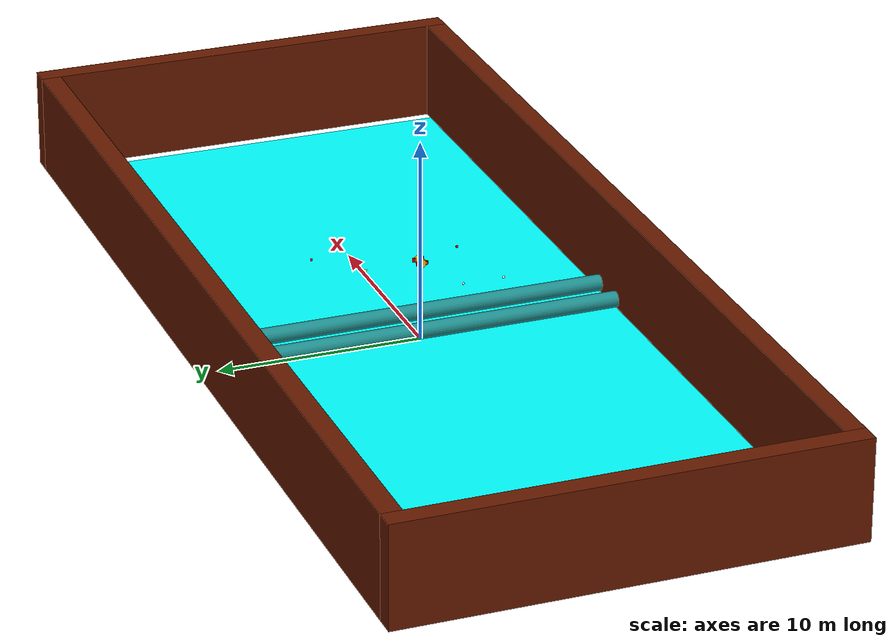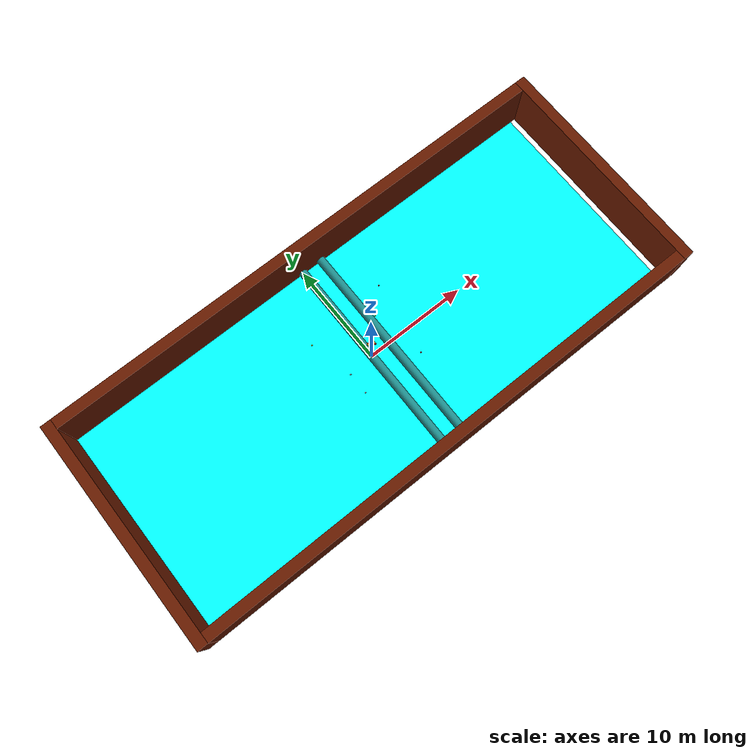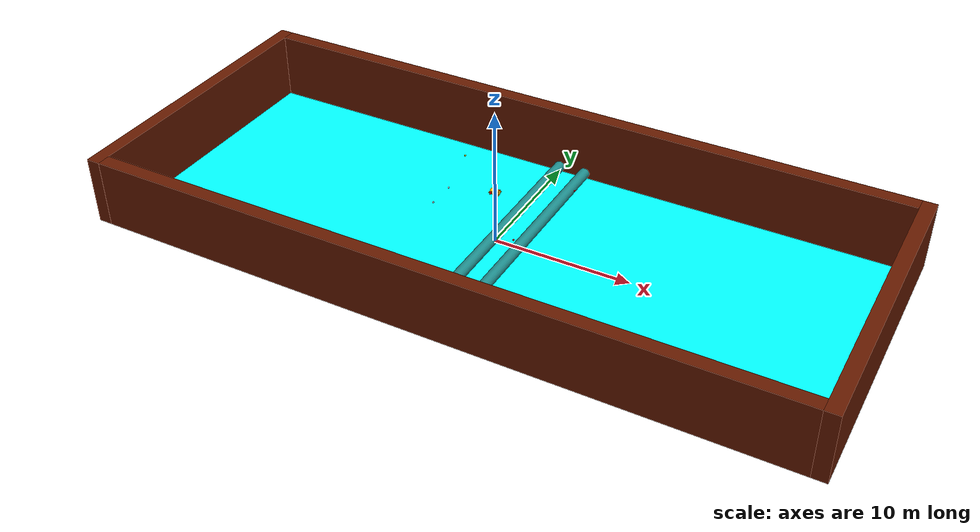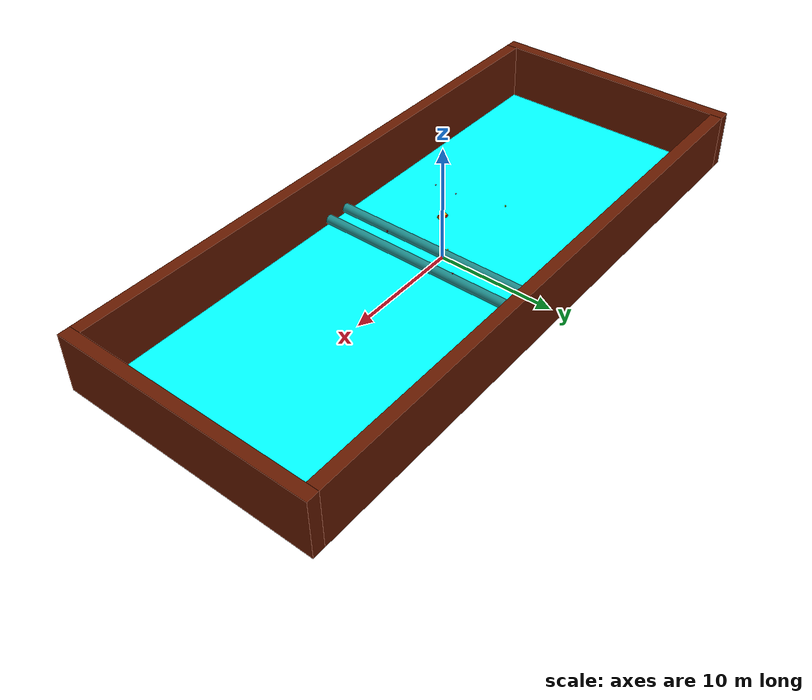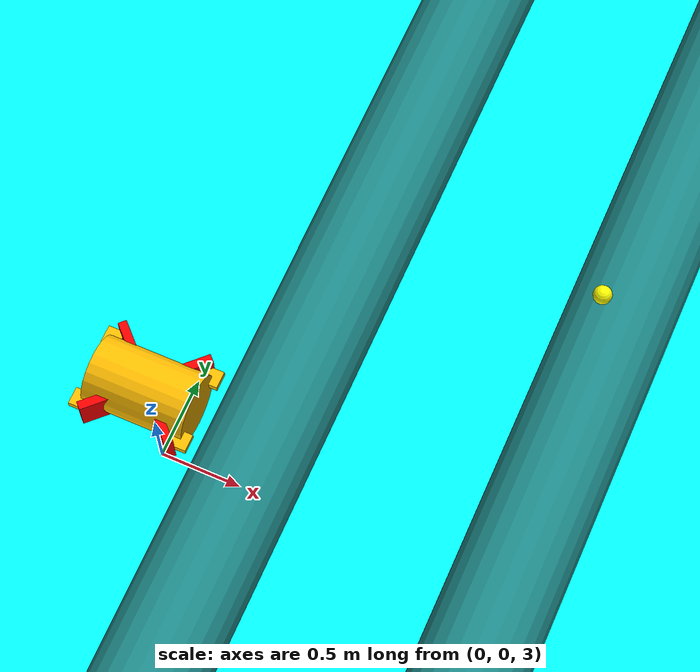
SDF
<?xml version="1.0" ?>

<!-- Run demo with ign-gazebo examples/standalone/multi_lrauv_race
  (example is provided in ign-gazebo6+). -->

<sdf version="1.6">
  <world name="multi_lrauv">
    <scene>
      <!-- For turquoise ambient to match particle effect -->
      <ambient>0.0 1.0 1.0</ambient>
      <background>0.0 0.7 0.8</background>
    </scene>

    <physics name="1ms" type="ode">
      <max_step_size>0.001</max_step_size>
      <real_time_factor>1.0</real_time_factor>
    </physics>
    <plugin
      filename="ignition-gazebo-physics-system"
      name="ignition::gazebo::systems::Physics">
    </plugin>
    <plugin
      filename="ignition-gazebo-user-commands-system"
      name="ignition::gazebo::systems::UserCommands">
    </plugin>
    <plugin
      filename="ignition-gazebo-scene-broadcaster-system"
      name="ignition::gazebo::systems::SceneBroadcaster">
    </plugin>
    <plugin
      filename="ignition-gazebo-contact-system"
      name="ignition::gazebo::systems::Contact">
    </plugin>

    <plugin
      filename="libignition-gazebo-imu-system.so"
      name="ignition::gazebo::systems::Imu">
    </plugin>
    <plugin
      filename="ignition-gazebo-sensors-system"
      name="ignition::gazebo::systems::Sensors">
    </plugin>

    <plugin
      filename="ignition-gazebo-buoyancy-system"
      name="ignition::gazebo::systems::Buoyancy">
      <uniform_fluid_density>1000</uniform_fluid_density>
    </plugin>

    <!-- Requires ParticleEmitter2 in ign-gazebo 4.8.0, which will be copied
      to ParticleEmitter in Ignition G.
      See https://github.com/ignitionrobotics/ign-gazebo/pull/730 -->
    <plugin
      filename="ignition-gazebo-particle-emitter2-system"
      name="ignition::gazebo::systems::ParticleEmitter2">
    </plugin>

    <light type="directional" name="sun">
      <cast_shadows>true</cast_shadows>
      <pose>0 0 10 0 0 0</pose>
      <diffuse>1 1 1 1</diffuse>
      <specular>0.5 0.5 0.5 1</specular>
      <attenuation>
        <range>1000</range>
        <constant>0.9</constant>
        <linear>0.01</linear>
        <quadratic>0.001</quadratic>
      </attenuation>
      <direction>-0.5 0.1 -0.9</direction>
    </light>

    <include>
      <pose>0 0 4 0 1.57 0</pose>
      <uri>models/SousMarin_Config1_v1</uri>
      <name>SousMarin</name>
    </include>

    <include>
      <pose>-3 -3 4 0 0 0</pose>
      <uri>models/BoueeBlanche_v1</uri>
      <name>BoueeBlanche1</name>
    </include>

    <include>
      <pose>-3 -1 4 0 0 0</pose>
      <uri>models/BoueeBlanche_v1</uri>
      <name>BoueeBlanche2</name>
    </include>

    <include>
      <pose>2 2 3 0 0 0</pose>
      <uri>models/BoueeJaune_v1</uri>
      <name>BoueeJaune1</name>
    </include>

    <include>
      <pose>-4 3 4 0 0 0</pose>
      <uri>models/BoueeJaune_v1</uri>
      <name>BoueeJaune2</name>
    </include>

    <include>
      <pose>4 4 3 0 0 0</pose>
      <uri>models/BoueeRouge_v1</uri>
      <name>BoueeRouge1</name>
    </include>

    <include>
      <pose>3 -3 3 0 0 0</pose>
      <uri>models/BoueeRouge_v1</uri>
      <name>BoueeRouge2</name>
    </include>

    <include>
      <pose>2 0 0.4 1.57 0 0</pose>
      <uri>models/Pipeline_v1</uri>
      <name>Pipeline1</name>
    </include>

    <include>
      <pose>0 0 0.4 1.57 0 0</pose>
      <uri>models/Pipeline_v1</uri>
      <name>Pipeline2</name>
    </include>

    <include>
      <pose>-25 0 2.5 0 0 0</pose>
      <uri>models/Mur_Piscine_v1</uri>
      <name>Mur_Piscine</name>
    </include>

    <include>
      <pose>0 0 -0.01 0 0 0</pose>
      <uri>models/Sol_v1</uri>
      <name>Sol</name>
    </include>

  </world>
</sdf>

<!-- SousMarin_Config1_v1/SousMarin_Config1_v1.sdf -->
<sdf version="1.6">
  <model name="SousMarin_Config1_v1">
    <!-- Body -->
    <link name="Chassis">
      <inertial>
        <mass>10</mass>
        <inertia>
          <ixx>1.825</ixx>
          <ixy>0</ixy>
          <ixz>0</ixz>
          <iyy>1.825</iyy>
          <iyz>0</iyz>
          <izz>0.05</izz>
        </inertia>
      </inertial>

      <collision name="main_body">
        <geometry>
          <cylinder>
            <radius>0.2</radius>
            <length>0.6</length>
          </cylinder>
        </geometry>
      </collision>

      <visual name="visual">
        <geometry>
          <cylinder>
            <radius>0.2</radius>
            <length>0.6</length>
          </cylinder>
        </geometry>
        <material>
            <ambient>1 0.74 0 1</ambient>
            <diffuse>1 0.74 0 1</diffuse>
            <specular>1 0.74 0 1</specular>
        </material>
      </visual>

      <sensor name="imu_sensor" type="imu">
        <always_on>1</always_on>
        <update_rate>250</update_rate>
        <topic>imu</topic>
        <visualize>true</visualize>
        <imu>
            <enable_orientation>0</enable_orientation>
            <angular_velocity>
                <x>
                    <noise type="gaussian">
                        <mean>0</mean>
                        <stddev>0.009</stddev>
                        <bias_mean>0.00075</bias_mean>
                        <bias_stddev>0.005</bias_stddev>
                        <dynamic_bias_stddev>0.00002</dynamic_bias_stddev>
                        <dynamic_bias_correlation_time>400.0</dynamic_bias_correlation_time>
                        <precision>0.00025</precision>
                    </noise>
                </x>
                <y>
                    <noise type="gaussian">
                        <mean>0
                        </mean>
                        <stddev>0.009
                        </stddev>
                        <bias_mean>0.00075
                        </bias_mean>
                        <bias_stddev>0.005
                        </bias_stddev>
                        <dynamic_bias_stddev>0.00002
                        </dynamic_bias_stddev>
                        <dynamic_bias_correlation_time>400.0
                        </dynamic_bias_correlation_time>
                        <precision>0.00025
                        </precision>
                    </noise>
                </y>
                <z>
                    <noise type="gaussian">
                        <mean>0
                        </mean>
                        <stddev>0.009
                        </stddev>
                        <bias_mean>0.00075
                        </bias_mean>
                        <bias_stddev>0.005
                        </bias_stddev>
                        <dynamic_bias_stddev>0.00002
                        </dynamic_bias_stddev>
                        <dynamic_bias_correlation_time>400.0
                        </dynamic_bias_correlation_time>
                        <precision>0.00025
                        </precision>
                    </noise>
                </z>
            </angular_velocity>
            <linear_acceleration>
                <x>
                    <noise type="gaussian">
                        <mean>0
                        </mean>
                        <stddev>0.021
                        </stddev>
                        <bias_mean>0.05
                        </bias_mean>
                        <bias_stddev>0.0075
                        </bias_stddev>
                        <dynamic_bias_stddev>0.000375
                        </dynamic_bias_stddev>
                        <dynamic_bias_correlation_time>175.0
                        </dynamic_bias_correlation_time>
                        <precision>0.005
                        </precision>
                    </noise>
                </x>
                <y>
                    <noise type="gaussian">
                        <mean>0
                        </mean>
                        <stddev>0.021
                        </stddev>
                        <bias_mean>0.05
                        </bias_mean>
                        <bias_stddev>0.0075
                        </bias_stddev>
                        <dynamic_bias_stddev>0.000375
                        </dynamic_bias_stddev>
                        <dynamic_bias_correlation_time>175.0
                        </dynamic_bias_correlation_time>
                        <precision>0.005
                        </precision>
                    </noise>
                </y>
                <z>
                    <noise type="gaussian">
                        <mean>0
                        </mean>
                        <stddev>0.021
                        </stddev>
                        <bias_mean>0.05
                        </bias_mean>
                        <bias_stddev>0.0075
                        </bias_stddev>
                        <dynamic_bias_stddev>0.000375
                        </dynamic_bias_stddev>
                        <dynamic_bias_correlation_time>175.0
                        </dynamic_bias_correlation_time>
                        <precision>0.005
                        </precision>
                    </noise>
                </z>
            </linear_acceleration>
        </imu>
      </sensor>

      <sensor name="gps" type="navsat">
          <always_on>1</always_on>
          <update_rate>1</update_rate>
          <topic>gps</topic>
          <visualize>true</visualize>
      </sensor>

      <sensor name="magnetometer" type="magnetometer">
          <always_on>1</always_on>
          <update_rate>20</update_rate>
          <topic>magnetometer</topic>
          <visualize>true</visualize>
          <magnetometer>
              <x>
                  <noise type="gaussian">
                      <mean>0.000000080
                      </mean>
                      <bias_mean>0.000000400
                      </bias_mean>
                  </noise>
              </x>
              <y>
                  <noise type="gaussian">
                      <mean>0.000000080
                      </mean>
                      <bias_mean>0.000000400
                      </bias_mean>
                  </noise>
              </y>
              <z>
                  <noise type="gaussian">
                      <mean>0.000000080
                      </mean>
                      <bias_mean>0.000000400
                      </bias_mean>
                  </noise>
              </z>
          </magnetometer>
      </sensor>

      <sensor name="scan_omni" type="gpu_lidar">
          <pose>0.21 0 0 0 0 0</pose>
          <update_rate>10</update_rate>
          <topic>gpu_lidar</topic>
          <visualize>true</visualize>
          <lidar>
              <scan>
                  <horizontal>
                      <!-- Real samples value is 1800 -->
                      <samples>1800
                      </samples>
                      <resolution>1
                      </resolution>
                      <min_angle>-3.141592654
                      </min_angle>
                      <max_angle>3.141592654
                      </max_angle>
                  </horizontal>
                  <vertical>
                      <samples>16
                      </samples>
                      <resolution>1
                      </resolution>
                      <min_angle>-0.261799388
                      </min_angle>
                      <max_angle>0.261799388
                      </max_angle>
                  </vertical>
              </scan>
              <range>
                  <min>0.2
                  </min>
                  <max>100.0
                  </max>
                  <resolution>0.01
                  </resolution>
              </range>
              <noise>
                  <type>gaussian
                  </type>
                  <mean>0
                  </mean>
                  <!-- Change the sdfdev value to 0.01 to add noise in to the sensor. You can set other values if you want. -->
                  <stddev>0.01
                  </stddev>
              </noise>
          </lidar>
          <always_on>false
          </always_on>
          <visualize>false
          </visualize>
      </sensor>

      <sensor name="camera_front" type="camera">
          <pose>0 0 0.3 0 -1.57 0</pose>
          <always_on>1</always_on>
          <update_rate>20</update_rate>
          <topic>camera_front</topic>
          <visualize>true</visualize>
          <camera name="camera_front">
              <horizontal_fov>2</horizontal_fov>
              <lens>
                  <intrinsics>
                    <!-- fx = fy = width / ( 2 * tan (hfov / 2 ) ) -->
                    <fx>1108.5</fx>
                    <fy>1108.5</fy>
                    <!-- cx = ( width + 1 ) / 2 -->
                    <cx>640.5</cx>
                    <!-- cy = ( height + 1 ) / 2 -->
                    <cy>480.5</cy>
                    <s>0</s>
                  </intrinsics>
              </lens>
              <distortion>
                  <k1>0.0</k1>
                  <k2>0.0</k2>
                  <k3>0.0</k3>
                  <p1>0.0</p1>
                  <p2>0.0</p2>
                  <center>0.5 0.5</center>
              </distortion>
              <image>
                  <width>1280</width>
                  <height>960</height>
                  <format>R8G8B8</format>
              </image>
              <clip>
                  <near>0.02</near>
                  <far>300</far>
              </clip>
              <noise>
                  <type>gaussian</type>
                  <mean>0</mean>
                  <stddev>0.007</stddev>
              </noise>
          </camera>
      </sensor>

    </link>

    <link name="Moteur1">
      <pose relative_to="Chassis">0 0.2 0.2 0.79 0 0</pose>
      <inertial>
        <mass>0.2</mass>
        <inertia>
          <ixx>4.25E-3</ixx>
          <ixy>0</ixy>
          <ixz>0</ixz>
          <iyy>4.25E-3</iyy>
          <iyz>0</iyz>
          <izz>8E-3</izz>
        </inertia>
      </inertial>

      <collision name="collision">
        <geometry>
          <box>
            <size>0.2 0.2 0.05</size>
          </box>
        </geometry>
      </collision>

      <visual name= "visual">
        <geometry>
          <box>
            <size>0.2 0.2 0.05</size>
          </box>
        </geometry>
        <material>
            <ambient>1 0 0 1</ambient>
            <diffuse>1 0 0 1</diffuse>
            <specular>1 0 0 1</specular>
        </material>
      </visual>
    </link>

    <joint name="Chassis_Moteur1" type="fixed">
      <parent>Chassis</parent>
      <child>Moteur1</child>
    </joint>

    <link name="Moteur2">
      <pose relative_to="Chassis">0 0.2 -0.2 -0.79 0 0</pose>
      <inertial>
        <mass>0.2</mass>
        <inertia>
          <ixx>4.25E-3</ixx>
          <ixy>0</ixy>
          <ixz>0</ixz>
          <iyy>4.25E-3</iyy>
          <iyz>0</iyz>
          <izz>8E-3</izz>
        </inertia>
      </inertial>

      <collision name="collision">
        <geometry>
          <box>
            <size>0.2 0.2 0.05</size>
          </box>
        </geometry>
      </collision>

      <visual name= "visual">
        <geometry>
          <box>
            <size>0.2 0.2 0.05</size>
          </box>
        </geometry>
        <material>
            <ambient>1 0 0 1</ambient>
            <diffuse>1 0 0 1</diffuse>
            <specular>1 0 0 1</specular>
        </material>
      </visual>
    </link>

    <joint name="Chassis_Moteur2" type="fixed">
      <parent>Chassis</parent>
      <child>Moteur2</child>
    </joint>

    <link name="Moteur3">
      <pose relative_to="Chassis">0 -0.2 -0.2 0.79 0 0</pose>
      <inertial>
        <mass>0.2</mass>
        <inertia>
          <ixx>4.25E-3</ixx>
          <ixy>0</ixy>
          <ixz>0</ixz>
          <iyy>4.25E-3</iyy>
          <iyz>0</iyz>
          <izz>8E-3</izz>
        </inertia>
      </inertial>

      <collision name="collision">
        <geometry>
          <box>
            <size>0.2 0.2 0.05</size>
          </box>
        </geometry>
      </collision>

      <visual name= "visual">
        <geometry>
          <box>
            <size>0.2 0.2 0.05</size>
          </box>
        </geometry>
        <material>
            <ambient>1 0 0 1</ambient>
            <diffuse>1 0 0 1</diffuse>
            <specular>1 0 0 1</specular>
        </material>
      </visual>
    </link>

    <joint name="Chassis_Moteur3" type="fixed">
      <parent>Chassis</parent>
      <child>Moteur3</child>
    </joint>

    <link name="Moteur4">
      <pose relative_to="Chassis">0 -0.2 0.2 -0.79 0 0</pose>
      <inertial>
        <mass>0.2</mass>
        <inertia>
          <ixx>4.25E-3</ixx>
          <ixy>0</ixy>
          <ixz>0</ixz>
          <iyy>4.25E-3</iyy>
          <iyz>0</iyz>
          <izz>8E-3</izz>
        </inertia>
      </inertial>

      <collision name="collision">
        <geometry>
          <box>
            <size>0.2 0.2 0.05</size>
          </box>
        </geometry>
      </collision>

      <visual name= "visual">
        <geometry>
          <box>
            <size>0.2 0.2 0.05</size>
          </box>
        </geometry>
        <material>
            <ambient>1 0 0 1</ambient>
            <diffuse>1 0 0 1</diffuse>
            <specular>1 0 0 1</specular>
        </material>
      </visual>
    </link>

    <joint name="Chassis_Moteur4" type="fixed">
      <parent>Chassis</parent>
      <child>Moteur4</child>
    </joint>

    <link name="MoteurProf1">
      <pose relative_to="Chassis">0 0.2 0.3 0 1.57 0</pose>
      <inertial>
        <mass>0.2</mass>
        <inertia>
          <ixx>1.16E-3</ixx>
          <ixy>0</ixy>
          <ixz>0</ixz>
          <iyy>1.16E-3</iyy>
          <iyz>0</iyz>
          <izz>2E-3</izz>
        </inertia>
      </inertial>

      <collision name="collision">
        <geometry>
          <box>
            <size>0.1 0.1 0.04</size>
          </box>
        </geometry>
      </collision>

      <visual name= "visual">
        <geometry>
          <box>
            <size>0.1 0.1 0.04</size>
          </box>
        </geometry>
        <material>
            <ambient>1 0.74 0 1</ambient>
            <diffuse>1 0.74 0 1</diffuse>
            <specular>1 0.74 0 1</specular>
        </material>
      </visual>
    </link>

    <joint name="Chassis_MoteurProf1" type="fixed">
      <parent>Chassis</parent>
      <child>MoteurProf1</child>
    </joint>

    <link name="MoteurProf2">
      <pose relative_to="Chassis">0 0.2 -0.3 0 1.57 0</pose>
      <inertial>
        <mass>0.2</mass>
        <inertia>
          <ixx>1.16E-3</ixx>
          <ixy>0</ixy>
          <ixz>0</ixz>
          <iyy>1.16E-3</iyy>
          <iyz>0</iyz>
          <izz>2E-3</izz>
        </inertia>
      </inertial>

      <collision name="collision">
        <geometry>
          <box>
            <size>0.1 0.1 0.04</size>
          </box>
        </geometry>
      </collision>

      <visual name= "visual">
        <geometry>
          <box>
            <size>0.1 0.1 0.04</size>
          </box>
        </geometry>
        <material>
            <ambient>1 0.74 0 1</ambient>
            <diffuse>1 0.74 0 1</diffuse>
            <specular>1 0.74 0 1</specular>
        </material>
      </visual>
    </link>

    <joint name="Chassis_MoteurProf2" type="fixed">
      <parent>Chassis</parent>
      <child>MoteurProf2</child>
    </joint>

    <link name="MoteurProf3">
      <pose relative_to="Chassis">0 -0.2 -0.3 0 1.57 0</pose>
      <inertial>
        <mass>0.2</mass>
        <inertia>
          <ixx>1.16E-3</ixx>
          <ixy>0</ixy>
          <ixz>0</ixz>
          <iyy>1.16E-3</iyy>
          <iyz>0</iyz>
          <izz>2E-3</izz>
        </inertia>
      </inertial>

      <collision name="collision">
        <geometry>
          <box>
            <size>0.1 0.1 0.04</size>
          </box>
        </geometry>
      </collision>

      <visual name= "visual">
        <geometry>
          <box>
            <size>0.1 0.1 0.04</size>
          </box>
        </geometry>
        <material>
            <ambient>1 0.74 0 1</ambient>
            <diffuse>1 0.74 0 1</diffuse>
            <specular>1 0.74 0 1</specular>
        </material>
      </visual>
    </link>

    <joint name="Chassis_MoteurProf3" type="fixed">
      <parent>Chassis</parent>
      <child>MoteurProf3</child>
    </joint>

    <link name="MoteurProf4">
      <pose relative_to="Chassis">0 -0.2 0.3 0 1.57 0</pose>
      <inertial>
        <mass>0.2</mass>
        <inertia>
          <ixx>1.16E-3</ixx>
          <ixy>0</ixy>
          <ixz>0</ixz>
          <iyy>1.16E-3</iyy>
          <iyz>0</iyz>
          <izz>2E-3</izz>
        </inertia>
      </inertial>

      <collision name="collision">
        <geometry>
          <box>
            <size>0.1 0.1 0.04</size>
          </box>
        </geometry>
      </collision>

      <visual name= "visual">
        <geometry>
          <box>
            <size>0.1 0.1 0.04</size>
          </box>
        </geometry>
        <material>
            <ambient>1 0.74 0 1</ambient>
            <diffuse>1 0.74 0 1</diffuse>
            <specular>1 0.74 0 1</specular>
        </material>
      </visual>
    </link>

    <joint name="Chassis_MoteurProf4" type="fixed">
      <parent>Chassis</parent>
      <child>MoteurProf4</child>
    </joint>

    <plugin
      filename="gz-sim-odometry-publisher-system"
      name="gz::sim::systems::OdometryPublisher">
      <dimensions>3</dimensions>
    </plugin>

  </model>
</sdf>

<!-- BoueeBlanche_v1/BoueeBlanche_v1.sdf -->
<sdf version="1.6">
  <model name="BoueeBlanche_v1">
    <static>true</static>
    <link name="BoueeBlanche">
      <inertial>
        <mass>0.01</mass>
        <inertia>
          <ixx>4.17E-6</ixx>
          <ixy>0</ixy>
          <ixz>0</ixz>
          <iyy>4.17E-6</iyy>
          <iyz>0</iyz>
          <izz>4.17E-6</izz>
        </inertia>
      </inertial>

      <collision name="collision">
        <geometry>
          <sphere>
            <radius>0.06</radius>
          </sphere>
        </geometry>
      </collision>

      <visual name="visual">
        <geometry>
          <sphere>
            <radius>0.06</radius>
          </sphere>
        </geometry>
        <material>
            <ambient>1 1 1 1</ambient>
            <diffuse>1 1 1 1</diffuse>
            <specular>1 1 1 1</specular>
        </material>
      </visual>
    </link>
  </model>
</sdf>

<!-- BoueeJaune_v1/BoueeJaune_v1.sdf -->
<sdf version="1.6">
  <model name="BoueeBlanche_v1">
    <static>true</static>
    <link name="BoueeBlanche">
      <inertial>
        <mass>0.01</mass>
        <inertia>
          <ixx>4.17E-6</ixx>
          <ixy>0</ixy>
          <ixz>0</ixz>
          <iyy>4.17E-6</iyy>
          <iyz>0</iyz>
          <izz>4.17E-6</izz>
        </inertia>
      </inertial>

      <collision name="collision">
        <geometry>
          <sphere>
            <radius>0.06</radius>
          </sphere>
        </geometry>
      </collision>

      <visual name="visual">
        <geometry>
          <sphere>
            <radius>0.06</radius>
          </sphere>
        </geometry>
        <material>
            <ambient>1 1 0 1</ambient>
            <diffuse>1 1 0 1</diffuse>
            <specular>1 1 0 1</specular>
        </material>
      </visual>
    </link>
  </model>
</sdf>

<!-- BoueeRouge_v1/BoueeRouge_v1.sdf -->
<sdf version="1.6">
  <model name="BoueeBlanche_v1">
    <static>true</static>
    <link name="BoueeBlanche">
      <inertial>
        <mass>0.01</mass>
        <inertia>
          <ixx>4.17E-6</ixx>
          <ixy>0</ixy>
          <ixz>0</ixz>
          <iyy>4.17E-6</iyy>
          <iyz>0</iyz>
          <izz>4.17E-6</izz>
        </inertia>
      </inertial>

      <collision name="collision">
        <geometry>
          <sphere>
            <radius>0.06</radius>
          </sphere>
        </geometry>
      </collision>

      <visual name="visual">
        <geometry>
          <sphere>
            <radius>0.06</radius>
          </sphere>
        </geometry>
        <material>
            <ambient>1 0 0 1</ambient>
            <diffuse>1 0 0 1</diffuse>
            <specular>1 0 0 1</specular>
        </material>
      </visual>
    </link>
  </model>
</sdf>

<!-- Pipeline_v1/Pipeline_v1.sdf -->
<sdf version="1.6">
  <model name="Cube_v1">
    <static>true</static>
    <link name="Cube">
      <inertial>
        <mass>100</mass>
        <inertia>
          <ixx>3337</ixx>
          <ixy>0</ixy>
          <ixz>0</ixz>
          <iyy>3337</iyy>
          <iyz>0</iyz>
          <izz>8</izz>
        </inertia>
      </inertial>

      <collision name="collision">
        <geometry>
          <cylinder>
            <radius>0.4</radius>
            <length>20</length>
          </cylinder>
        </geometry>
      </collision>

      <visual name="visual">
        <geometry>
          <cylinder>
            <radius>0.4</radius>
            <length>20</length>
          </cylinder>
        </geometry>
        <material>
            <ambient>0.12 0.55 0.55 1</ambient>
            <diffuse>0.12 0.55 0.55 1</diffuse>
            <specular>0.12 0.55 0.55 1</specular>
        </material>
      </visual>
    </link>
  </model>
</sdf>

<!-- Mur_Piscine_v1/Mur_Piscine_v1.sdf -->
<sdf version="1.6">
  <model name="Mur_Piscine_v1">
    <static>true</static>
    <link name="Mur1">
      <inertial>
        <mass>1000</mass>
        <inertia>
          <ixx>42416.67</ixx>
          <ixy>0</ixy>
          <ixz>0</ixz>
          <iyy>2166.67</iyy>
          <iyz>0</iyz>
          <izz>40416.67</izz>
        </inertia>
      </inertial>

      <collision name="collision">
        <geometry>
          <box>
            <size>1 22 5</size>
          </box>
        </geometry>
      </collision>

      <visual name="visual">
        <geometry>
            <box>
                <size>1 22 5</size>
            </box>
        </geometry>
        <material>
            <ambient>0.4 0.1 0 1</ambient>
            <diffuse>0.4 0.1 0 1</diffuse>
            <specular>0.4 0.1 0 1</specular>
        </material>
      </visual>
    </link>

    <link name="Mur2">
      <pose relative_to="Mur1">25.5 -10.5 0 0 0 0</pose>
      <inertial>
        <mass>1000</mass>
        <inertia>
          <ixx>2166.67</ixx>
          <ixy>0</ixy>
          <ixz>0</ixz>
          <iyy>210417</iyy>
          <iyz>0</iyz>
          <izz>208416</izz>
        </inertia>
      </inertial>

      <collision name="collision">
        <geometry>
          <box>
            <size>50 1 5</size>
          </box>
        </geometry>
      </collision>

      <visual name="visual">
        <geometry>
            <box>
                <size>50 1 5</size>
            </box>
        </geometry>
        <material>
            <ambient>0.4 0.1 0 1</ambient>
            <diffuse>0.4 0.1 0 1</diffuse>
            <specular>0.4 0.1 0 1</specular>
        </material>
      </visual>
    </link>

    <joint name="Mur1_Mur2" type="fixed">
      <parent>Mur1</parent>
      <child>Mur2</child>
    </joint>

    <link name="Mur3">
      <pose relative_to="Mur1">25.5 10.5 0 0 0 0</pose>
      <inertial>
        <mass>1000</mass>
        <inertia>
          <ixx>2166.67</ixx>
          <ixy>0</ixy>
          <ixz>0</ixz>
          <iyy>210417</iyy>
          <iyz>0</iyz>
          <izz>208416</izz>
        </inertia>
      </inertial>

      <collision name="collision">
        <geometry>
          <box>
            <size>50 1 5</size>
          </box>
        </geometry>
      </collision>

      <visual name="visual">
        <geometry>
            <box>
                <size>50 1 5</size>
            </box>
        </geometry>
        <material>
            <ambient>0.4 0.1 0 1</ambient>
            <diffuse>0.4 0.1 0 1</diffuse>
            <specular>0.4 0.1 0 1</specular>
        </material>
      </visual>
    </link>

    <joint name="Mur1_Mur3" type="fixed">
      <parent>Mur1</parent>
      <child>Mur3</child>
    </joint>

    <link name="Mur4">
      <pose relative_to="Mur1">51 0 0 0 0 0</pose>
      <inertial>
        <mass>1000</mass>
        <inertia>
          <ixx>42416.67</ixx>
          <ixy>0</ixy>
          <ixz>0</ixz>
          <iyy>2166.67</iyy>
          <iyz>0</iyz>
          <izz>40416.67</izz>
        </inertia>
      </inertial>

      <collision name="collision">
        <geometry>
          <box>
            <size>1 22 5</size>
          </box>
        </geometry>
      </collision>

      <visual name="visual">
        <geometry>
            <box>
                <size>1 22 5</size>
            </box>
        </geometry>
        <material>
            <ambient>0.4 0.1 0 1</ambient>
            <diffuse>0.4 0.1 0 1</diffuse>
            <specular>0.4 0.1 0 1</specular>
        </material>
      </visual>
    </link>

    <joint name="Mur1_Mur4" type="fixed">
      <parent>Mur1</parent>
      <child>Mur4</child>
    </joint>

  </model>
</sdf>

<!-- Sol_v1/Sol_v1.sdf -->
<sdf version="1.6">
  <model name="Sol_v1">
    <static>true</static>
    <link name="Sol">
      <inertial>
        <mass>1</mass>
        <inertia>
          <ixx>1</ixx>
          <ixy>0</ixy>
          <ixz>0</ixz>
          <iyy>1</iyy>
          <iyz>0</iyz>
          <izz>1</izz>
        </inertia>
      </inertial>

      <collision name="collision">
        <geometry>
          <box>
            <size>50 20 0.01</size>
          </box>
        </geometry>
      </collision>

      <visual name="visual">
        <geometry>
            <box>
                <size>50 20 0.01</size>
            </box>
        </geometry>
        <material>
            <ambient>0 1 1 1</ambient>
            <diffuse>0 1 1 1</diffuse>
            <specular>0 1 1 1</specular>
        </material>
      </visual>
    </link>
  </model>
</sdf>
